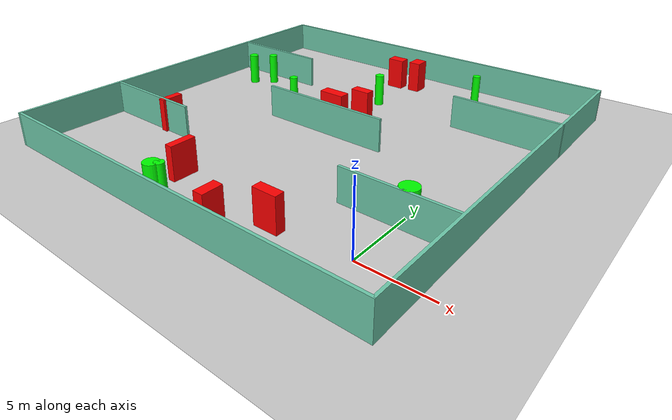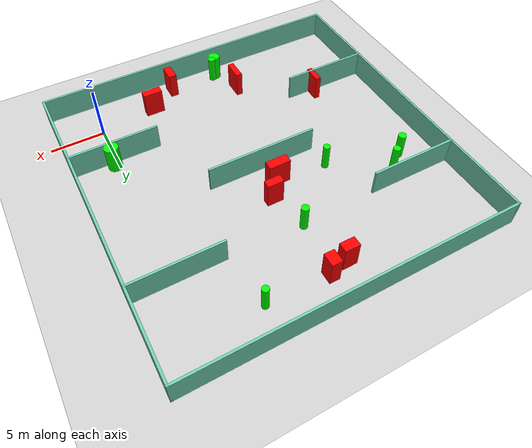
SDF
<sdf version="1.7">
 <world name="default">
  <light name="sun" type="directional">
   <pose>0 0 10 0 -0 0</pose>
   <diffuse>0.8 0.8 0.8 1</diffuse>
   <specular>0.2 0.2 0.2 1</specular>
   <attenuation>
    <range>1000</range>
    <constant>0.9</constant>
    <linear>0.01</linear>
    <quadratic>0.001</quadratic>
   </attenuation>
   <direction>-0.5 0.1 -0.9</direction>
   <spot><inner_angle>0</inner_angle><outer_angle>0</outer_angle><falloff>0</falloff></spot>
  </light>
  <model name="ground_plane">
   <static>1</static>
   <link name="link">
    <collision name="collision">
     <geometry><plane><normal>0 0 1</normal><size>100 100</size></plane></geometry>
     <surface>
      <contact><collide_bitmask>65535</collide_bitmask></contact>
      <friction><ode><mu>100</mu><mu2>50</mu2></ode></friction>
     </surface>
    </collision>
    <visual name="visual">
     <cast_shadows>0</cast_shadows>
     <geometry><plane><normal>0 0 1</normal><size>100 100</size></plane></geometry>
     <material>
      <script><uri>file://media/materials/scripts/gazebo.material</uri><name>Gazebo/Grey</name></script>
     </material>
    </visual>
   </link>
  </model>
  <gravity>0 0 -9.8</gravity>
  <magnetic_field>6e-06 2.3e-05 -4.2e-05</magnetic_field>
  <atmosphere type="adiabatic"/>
  <physics type="ode">
   <max_step_size>0.001</max_step_size>
   <real_time_factor>1</real_time_factor>
   <real_time_update_rate>1000</real_time_update_rate>
  </physics>
  <scene><ambient>0.4 0.4 0.4 1</ambient><background>0.7 0.7 0.7 1</background><shadows>1</shadows></scene>
  <spherical_coordinates>
   <surface_model>EARTH_WGS84</surface_model>
   <latitude_deg>0</latitude_deg>
   <longitude_deg>0</longitude_deg>
   <elevation>0</elevation>
   <heading_deg>0</heading_deg>
  </spherical_coordinates>
  <model name="my_base_walls">
   <link name="Wall_10">
    <collision name="Wall_10_Collision">
     <geometry><box><size>8.2 0.2 2.5</size></box></geometry>
     <pose>0 0 1.25 0 -0 0</pose>
    </collision>
    <visual name="Wall_10_Visual">
     <pose>0 0 1.25 0 -0 0</pose>
     <geometry><box><size>8.2 0.2 2.5</size></box></geometry>
     <material>
      <script><uri>file://media/materials/scripts/gazebo.material</uri><name>Gazebo/Grey</name></script>
      <ambient>0.435294 0.796078 0.67451 1</ambient>
     </material>
     <meta><layer>0</layer></meta>
    </visual>
    <pose>-11 -7 0 0 -0 0</pose>
   </link>
   <link name="Wall_12">
    <collision name="Wall_12_Collision">
     <geometry><box><size>8.2 0.2 2.5</size></box></geometry>
     <pose>0 0 1.25 0 -0 0</pose>
    </collision>
    <visual name="Wall_12_Visual">
     <pose>0 0 1.25 0 -0 0</pose>
     <geometry><box><size>8.2 0.2 2.5</size></box></geometry>
     <material>
      <script><uri>file://media/materials/scripts/gazebo.material</uri><name>Gazebo/Grey</name></script>
      <ambient>0.435294 0.796078 0.67451 1</ambient>
     </material>
     <meta><layer>0</layer></meta>
    </visual>
    <pose>-11 7 0 0 -0 0</pose>
   </link>
   <link name="Wall_14">
    <collision name="Wall_14_Collision">
     <geometry><box><size>8.2 0.2 2.5</size></box></geometry>
     <pose>0 0 1.25 0 -0 0</pose>
    </collision>
    <visual name="Wall_14_Visual">
     <pose>0 0 1.25 0 -0 0</pose>
     <geometry><box><size>8.2 0.2 2.5</size></box></geometry>
     <material>
      <script><uri>file://media/materials/scripts/gazebo.material</uri><name>Gazebo/Grey</name></script>
      <ambient>0.435294 0.796078 0.67451 1</ambient>
     </material>
     <meta><layer>0</layer></meta>
    </visual>
    <pose>11 7 0 0 -0 3.14159</pose>
   </link>
   <link name="Wall_16">
    <collision name="Wall_16_Collision">
     <geometry><box><size>10.2 0.2 2.5</size></box></geometry>
     <pose>0 0 1.25 0 -0 0</pose>
    </collision>
    <visual name="Wall_16_Visual">
     <pose>0 0 1.25 0 -0 0</pose>
     <geometry><box><size>10.2 0.2 2.5</size></box></geometry>
     <material>
      <script><uri>file://media/materials/scripts/gazebo.material</uri><name>Gazebo/Grey</name></script>
      <ambient>0.435294 0.796078 0.67451 1</ambient>
     </material>
     <meta><layer>0</layer></meta>
    </visual>
    <pose>0 0 0 0 -0 3.14159</pose>
   </link>
   <link name="Wall_2">
    <collision name="Wall_2_Collision">
     <geometry><box><size>30.2 0.2 2.5</size></box></geometry>
     <pose>0 0 1.25 0 -0 0</pose>
    </collision>
    <visual name="Wall_2_Visual">
     <pose>0 0 1.25 0 -0 0</pose>
     <geometry><box><size>30.2 0.2 2.5</size></box></geometry>
     <material>
      <script><uri>file://media/materials/scripts/gazebo.material</uri><name>Gazebo/Grey</name></script>
      <ambient>0.435294 0.796078 0.67451 1</ambient>
     </material>
     <meta><layer>0</layer></meta>
    </visual>
    <pose>0 -15 0 0 -0 3.14159</pose>
   </link>
   <link name="Wall_3">
    <collision name="Wall_3_Collision">
     <geometry><box><size>30.2 0.2 2.5</size></box></geometry>
     <pose>0 0 1.25 0 -0 0</pose>
    </collision>
    <visual name="Wall_3_Visual">
     <pose>0 0 1.25 0 -0 0</pose>
     <geometry><box><size>30.2 0.2 2.5</size></box></geometry>
     <material>
      <script><uri>file://media/materials/scripts/gazebo.material</uri><name>Gazebo/Grey</name></script>
      <ambient>0.435294 0.796078 0.67451 1</ambient>
     </material>
     <meta><layer>0</layer></meta>
    </visual>
    <pose>-15 0 0 0 -0 1.5708</pose>
   </link>
   <link name="Wall_4">
    <collision name="Wall_4_Collision">
     <geometry><box><size>30.2 0.2 2.5</size></box></geometry>
     <pose>0 0 1.25 0 -0 0</pose>
    </collision>
    <visual name="Wall_4_Visual">
     <pose>0 0 1.25 0 -0 0</pose>
     <geometry><box><size>30.2 0.2 2.5</size></box></geometry>
     <material>
      <script><uri>file://media/materials/scripts/gazebo.material</uri><name>Gazebo/Grey</name></script>
      <ambient>0.435294 0.796078 0.67451 1</ambient>
     </material>
     <meta><layer>0</layer></meta>
    </visual>
    <pose>0 15 0 0 -0 0</pose>
   </link>
   <link name="Wall_6">
    <collision name="Wall_6_Collision">
     <geometry><box><size>30.2 0.2 2.5</size></box></geometry>
     <pose>0 0 1.25 0 -0 0</pose>
    </collision>
    <visual name="Wall_6_Visual">
     <pose>0 0 1.25 0 -0 0</pose>
     <geometry><box><size>30.2 0.2 2.5</size></box></geometry>
     <material>
      <script><uri>file://media/materials/scripts/gazebo.material</uri><name>Gazebo/Grey</name></script>
      <ambient>0.435294 0.796078 0.67451 1</ambient>
     </material>
     <meta><layer>0</layer></meta>
    </visual>
    <pose>15 0 0 0 -0 1.5708</pose>
   </link>
   <link name="Wall_8">
    <collision name="Wall_8_Collision">
     <geometry><box><size>8.2 0.2 2.5</size></box></geometry>
     <pose>0 0 1.25 0 -0 0</pose>
    </collision>
    <visual name="Wall_8_Visual">
     <pose>0 0 1.25 0 -0 0</pose>
     <geometry><box><size>8.2 0.2 2.5</size></box></geometry>
     <material>
      <script><uri>file://media/materials/scripts/gazebo.material</uri><name>Gazebo/Grey</name></script>
      <ambient>0.435294 0.796078 0.67451 1</ambient>
     </material>
     <meta><layer>0</layer></meta>
    </visual>
    <pose>11 -7 0 0 -0 3.14159</pose>
   </link>
   <static>1</static>
   <pose>-11 11 0 0 -0 0</pose>
  </model>
  <model name="cylinder1">
   <static>1</static>
   <link name="link">
    <inertial>
     <mass>1</mass>
     <inertia><ixx>0.5</ixx><ixy>0</ixy><ixz>0</ixz><iyy>0.5</iyy><iyz>0</iyz><izz>1</izz></inertia>
    </inertial>
    <collision name="collision">
     <geometry><cylinder><radius>0.3040382389974126</radius><length>2.5</length></cylinder></geometry>
    </collision>
    <visual name="visual">
     <geometry><cylinder><radius>0.3040382389974126</radius><length>2.5</length></cylinder></geometry>
     <material>
      <ambient>0 1 0 1</ambient>
      <diffuse>0 1 0 1</diffuse>
      <specular>0.1 0.1 0.1 1</specular>
      <emissive>0 0 0 0</emissive>
     </material>
    </visual>
   </link>
   <pose>-4.683139583311476 23.00576154551968 1.25 0 0 0</pose>
  </model>
  <model name="cylinder2">
   <static>1</static>
   <link name="link">
    <inertial>
     <mass>1</mass>
     <inertia><ixx>0.5</ixx><ixy>0</ixy><ixz>0</ixz><iyy>0.5</iyy><iyz>0</iyz><izz>1</izz></inertia>
    </inertial>
    <collision name="collision">
     <geometry><cylinder><radius>0.3458573954621207</radius><length>2.5</length></cylinder></geometry>
    </collision>
    <visual name="visual">
     <geometry><cylinder><radius>0.3458573954621207</radius><length>2.5</length></cylinder></geometry>
     <material>
      <ambient>0 1 0 1</ambient>
      <diffuse>0 1 0 1</diffuse>
      <specular>0.1 0.1 0.1 1</specular>
      <emissive>0 0 0 0</emissive>
     </material>
    </visual>
   </link>
   <pose>-10.900515655687206 18.23706546801614 1.25 0 0 0</pose>
  </model>
  <model name="cylinder3">
   <static>1</static>
   <link name="link">
    <inertial>
     <mass>1</mass>
     <inertia><ixx>0.5</ixx><ixy>0</ixy><ixz>0</ixz><iyy>0.5</iyy><iyz>0</iyz><izz>1</izz></inertia>
    </inertial>
    <collision name="collision">
     <geometry><cylinder><radius>0.3477821795760382</radius><length>2.5</length></cylinder></geometry>
    </collision>
    <visual name="visual">
     <geometry><cylinder><radius>0.3477821795760382</radius><length>2.5</length></cylinder></geometry>
     <material>
      <ambient>0 1 0 1</ambient>
      <diffuse>0 1 0 1</diffuse>
      <specular>0.1 0.1 0.1 1</specular>
      <emissive>0 0 0 0</emissive>
     </material>
    </visual>
   </link>
   <pose>-12.51058587522974 -2.3631794858610307 1.25 0 0 0</pose>
  </model>
  <model name="cylinder4">
   <static>1</static>
   <link name="link">
    <inertial>
     <mass>1</mass>
     <inertia><ixx>0.5</ixx><ixy>0</ixy><ixz>0</ixz><iyy>0.5</iyy><iyz>0</iyz><izz>1</izz></inertia>
    </inertial>
    <collision name="collision">
     <geometry><cylinder><radius>0.36756761409951283</radius><length>2.5</length></cylinder></geometry>
    </collision>
    <visual name="visual">
     <geometry><cylinder><radius>0.36756761409951283</radius><length>2.5</length></cylinder></geometry>
     <material>
      <ambient>0 1 0 1</ambient>
      <diffuse>0 1 0 1</diffuse>
      <specular>0.1 0.1 0.1 1</specular>
      <emissive>0 0 0 0</emissive>
     </material>
    </visual>
   </link>
   <pose>-22.614682402530416 15.517460865433371 1.25 0 0 0</pose>
  </model>
  <model name="cylinder5">
   <static>1</static>
   <link name="link">
    <inertial>
     <mass>1</mass>
     <inertia><ixx>0.5</ixx><ixy>0</ixy><ixz>0</ixz><iyy>0.5</iyy><iyz>0</iyz><izz>1</izz></inertia>
    </inertial>
    <collision name="collision">
     <geometry><cylinder><radius>0.5454844523665067</radius><length>2.5</length></cylinder></geometry>
    </collision>
    <visual name="visual">
     <geometry><cylinder><radius>0.5454844523665067</radius><length>2.5</length></cylinder></geometry>
     <material>
      <ambient>0 1 0 1</ambient>
      <diffuse>0 1 0 1</diffuse>
      <specular>0.1 0.1 0.1 1</specular>
      <emissive>0 0 0 0</emissive>
     </material>
    </visual>
   </link>
   <pose>-12.901371443507362 -2.643458938497946 1.25 0 0 0</pose>
  </model>
  <model name="cylinder6">
   <static>1</static>
   <link name="link">
    <inertial>
     <mass>1</mass>
     <inertia><ixx>0.5</ixx><ixy>0</ixy><ixz>0</ixz><iyy>0.5</iyy><iyz>0</iyz><izz>1</izz></inertia>
    </inertial>
    <collision name="collision">
     <geometry><cylinder><radius>0.3375163020706826</radius><length>2.5</length></cylinder></geometry>
    </collision>
    <visual name="visual">
     <geometry><cylinder><radius>0.3375163020706826</radius><length>2.5</length></cylinder></geometry>
     <material>
      <ambient>0 1 0 1</ambient>
      <diffuse>0 1 0 1</diffuse>
      <specular>0.1 0.1 0.1 1</specular>
      <emissive>0 0 0 0</emissive>
     </material>
    </visual>
   </link>
   <pose>-21.237941912149694 16.54693597029286 1.25 0 0 0</pose>
  </model>
  <model name="cylinder7">
   <static>1</static>
   <link name="link">
    <inertial>
     <mass>1</mass>
     <inertia><ixx>0.5</ixx><ixy>0</ixy><ixz>0</ixz><iyy>0.5</iyy><iyz>0</iyz><izz>1</izz></inertia>
    </inertial>
    <collision name="collision">
     <geometry><cylinder><radius>0.6470343619889364</radius><length>2.5</length></cylinder></geometry>
    </collision>
    <visual name="visual">
     <geometry><cylinder><radius>0.6470343619889364</radius><length>2.5</length></cylinder></geometry>
     <material>
      <ambient>0 1 0 1</ambient>
      <diffuse>0 1 0 1</diffuse>
      <specular>0.1 0.1 0.1 1</specular>
      <emissive>0 0 0 0</emissive>
     </material>
    </visual>
   </link>
   <pose>0.3961267424026005 4.570701478013778 1.25 0 0 0</pose>
  </model>
  <model name="cylinder8">
   <static>1</static>
   <link name="link">
    <inertial>
     <mass>1</mass>
     <inertia><ixx>0.5</ixx><ixy>0</ixy><ixz>0</ixz><iyy>0.5</iyy><iyz>0</iyz><izz>1</izz></inertia>
    </inertial>
    <collision name="collision">
     <geometry><cylinder><radius>0.31740168471907326</radius><length>2.5</length></cylinder></geometry>
    </collision>
    <visual name="visual">
     <geometry><cylinder><radius>0.31740168471907326</radius><length>2.5</length></cylinder></geometry>
     <material>
      <ambient>0 1 0 1</ambient>
      <diffuse>0 1 0 1</diffuse>
      <specular>0.1 0.1 0.1 1</specular>
      <emissive>0 0 0 0</emissive>
     </material>
    </visual>
   </link>
   <pose>-16.035665900654013 13.461266738084461 1.25 0 0 0</pose>
  </model>
  <model name="box1">
   <static>1</static>
   <link name="link">
    <inertial>
     <mass>1</mass>
     <inertia><ixx>0.083</ixx><ixy>0</ixy><ixz>0</ixz><iyy>0.083</iyy><iyz>0</iyz><izz>0.083</izz></inertia>
    </inertial>
    <collision name="collision">
     <geometry><box><size>0.7526907733696515 1.5006935862004462 2.5</size></box></geometry>
    </collision>
    <visual name="visual">
     <geometry><box><size>0.7526907733696515 1.5006935862004462 2.5</size></box></geometry>
     <material>
      <ambient>1 0 0 1</ambient>
      <diffuse>1 0 0 1</diffuse>
      <specular>0.1 0.1 0.1 1</specular>
      <emissive>0 0 0 0</emissive>
     </material>
    </visual>
    <sensor name="my_contact" type="contact">
     <contact><collision>box_collision</collision><topic>__default_topic__</topic></contact>
    </sensor>
   </link>
   <pose>-8.027676330536327 -2.494616279030102 1.25 0 0 0</pose>
  </model>
  <model name="box2">
   <static>1</static>
   <link name="link">
    <inertial>
     <mass>1</mass>
     <inertia><ixx>0.083</ixx><ixy>0</ixy><ixz>0</ixz><iyy>0.083</iyy><iyz>0</iyz><izz>0.083</izz></inertia>
    </inertial>
    <collision name="collision">
     <geometry><box><size>0.9398931248463107 1.1847146828027804 2.5</size></box></geometry>
    </collision>
    <visual name="visual">
     <geometry><box><size>0.9398931248463107 1.1847146828027804 2.5</size></box></geometry>
     <material>
      <ambient>1 0 0 1</ambient>
      <diffuse>1 0 0 1</diffuse>
      <specular>0.1 0.1 0.1 1</specular>
      <emissive>0 0 0 0</emissive>
     </material>
    </visual>
    <sensor name="my_contact" type="contact">
     <contact><collision>box_collision</collision><topic>__default_topic__</topic></contact>
    </sensor>
   </link>
   <pose>-10.288171122848258 23.158856148454962 1.25 0 0 0</pose>
  </model>
  <model name="box3">
   <static>1</static>
   <link name="link">
    <inertial>
     <mass>1</mass>
     <inertia><ixx>0.083</ixx><ixy>0</ixy><ixz>0</ixz><iyy>0.083</iyy><iyz>0</iyz><izz>0.083</izz></inertia>
    </inertial>
    <collision name="collision">
     <geometry><box><size>1.3497821782908863 0.879384870079468 2.5</size></box></geometry>
    </collision>
    <visual name="visual">
     <geometry><box><size>1.3497821782908863 0.879384870079468 2.5</size></box></geometry>
     <material>
      <ambient>1 0 0 1</ambient>
      <diffuse>1 0 0 1</diffuse>
      <specular>0.1 0.1 0.1 1</specular>
      <emissive>0 0 0 0</emissive>
     </material>
    </visual>
    <sensor name="my_contact" type="contact">
     <contact><collision>box_collision</collision><topic>__default_topic__</topic></contact>
    </sensor>
   </link>
   <pose>-12.027070581160615 22.778001498388818 1.25 0 0 0</pose>
  </model>
  <model name="box4">
   <static>1</static>
   <link name="link">
    <inertial>
     <mass>1</mass>
     <inertia><ixx>0.083</ixx><ixy>0</ixy><ixz>0</ixz><iyy>0.083</iyy><iyz>0</iyz><izz>0.083</izz></inertia>
    </inertial>
    <collision name="collision">
     <geometry><box><size>1.7608415050463628 0.712280479372212 2.5</size></box></geometry>
    </collision>
    <visual name="visual">
     <geometry><box><size>1.7608415050463628 0.712280479372212 2.5</size></box></geometry>
     <material>
      <ambient>1 0 0 1</ambient>
      <diffuse>1 0 0 1</diffuse>
      <specular>0.1 0.1 0.1 1</specular>
      <emissive>0 0 0 0</emissive>
     </material>
    </visual>
    <sensor name="my_contact" type="contact">
     <contact><collision>box_collision</collision><topic>__default_topic__</topic></contact>
    </sensor>
   </link>
   <pose>-5.387219230427869 -0.5582519255566774 1.25 0 0 0</pose>
  </model>
  <model name="box5">
   <static>1</static>
   <link name="link">
    <inertial>
     <mass>1</mass>
     <inertia><ixx>0.083</ixx><ixy>0</ixy><ixz>0</ixz><iyy>0.083</iyy><iyz>0</iyz><izz>0.083</izz></inertia>
    </inertial>
    <collision name="collision">
     <geometry><box><size>1.9960810258473676 0.8508290731174457 2.5</size></box></geometry>
    </collision>
    <visual name="visual">
     <geometry><box><size>1.9960810258473676 0.8508290731174457 2.5</size></box></geometry>
     <material>
      <ambient>1 0 0 1</ambient>
      <diffuse>1 0 0 1</diffuse>
      <specular>0.1 0.1 0.1 1</specular>
      <emissive>0 0 0 0</emissive>
     </material>
    </visual>
    <sensor name="my_contact" type="contact">
     <contact><collision>box_collision</collision><topic>__default_topic__</topic></contact>
    </sensor>
   </link>
   <pose>-11.459844233638236 12.955956968157373 1.25 0 0 0</pose>
  </model>
  <model name="box6">
   <static>1</static>
   <link name="link">
    <inertial>
     <mass>1</mass>
     <inertia><ixx>0.083</ixx><ixy>0</ixy><ixz>0</ixz><iyy>0.083</iyy><iyz>0</iyz><izz>0.083</izz></inertia>
    </inertial>
    <collision name="collision">
     <geometry><box><size>0.5171582399122518 1.674584813738734 2.5</size></box></geometry>
    </collision>
    <visual name="visual">
     <geometry><box><size>0.5171582399122518 1.674584813738734 2.5</size></box></geometry>
     <material>
      <ambient>1 0 0 1</ambient>
      <diffuse>1 0 0 1</diffuse>
      <specular>0.1 0.1 0.1 1</specular>
      <emissive>0 0 0 0</emissive>
     </material>
    </visual>
    <sensor name="my_contact" type="contact">
     <contact><collision>box_collision</collision><topic>__default_topic__</topic></contact>
    </sensor>
   </link>
   <pose>-20.330479389990973 4.5392230214814395 1.25 0 0 0</pose>
  </model>
  <model name="box7">
   <static>1</static>
   <link name="link">
    <inertial>
     <mass>1</mass>
     <inertia><ixx>0.083</ixx><ixy>0</ixy><ixz>0</ixz><iyy>0.083</iyy><iyz>0</iyz><izz>0.083</izz></inertia>
    </inertial>
    <collision name="collision">
     <geometry><box><size>0.5714650673938687 1.9208109124093833 2.5</size></box></geometry>
    </collision>
    <visual name="visual">
     <geometry><box><size>0.5714650673938687 1.9208109124093833 2.5</size></box></geometry>
     <material>
      <ambient>1 0 0 1</ambient>
      <diffuse>1 0 0 1</diffuse>
      <specular>0.1 0.1 0.1 1</specular>
      <emissive>0 0 0 0</emissive>
     </material>
    </visual>
    <sensor name="my_contact" type="contact">
     <contact><collision>box_collision</collision><topic>__default_topic__</topic></contact>
    </sensor>
   </link>
   <pose>-13.813716816283915 0.2474307850592834 1.25 0 0 0</pose>
  </model>
  <model name="box8">
   <static>1</static>
   <link name="link">
    <inertial>
     <mass>1</mass>
     <inertia><ixx>0.083</ixx><ixy>0</ixy><ixz>0</ixz><iyy>0.083</iyy><iyz>0</iyz><izz>0.083</izz></inertia>
    </inertial>
    <collision name="collision">
     <geometry><box><size>1.497047235383833 0.7285191876182696 2.5</size></box></geometry>
    </collision>
    <visual name="visual">
     <geometry><box><size>1.497047235383833 0.7285191876182696 2.5</size></box></geometry>
     <material>
      <ambient>1 0 0 1</ambient>
      <diffuse>1 0 0 1</diffuse>
      <specular>0.1 0.1 0.1 1</specular>
      <emissive>0 0 0 0</emissive>
     </material>
    </visual>
    <sensor name="my_contact" type="contact">
     <contact><collision>box_collision</collision><topic>__default_topic__</topic></contact>
    </sensor>
   </link>
   <pose>-10.1000938846291 14.682522680736557 1.25 0 0 0</pose>
  </model>
 </world>
</sdf>
